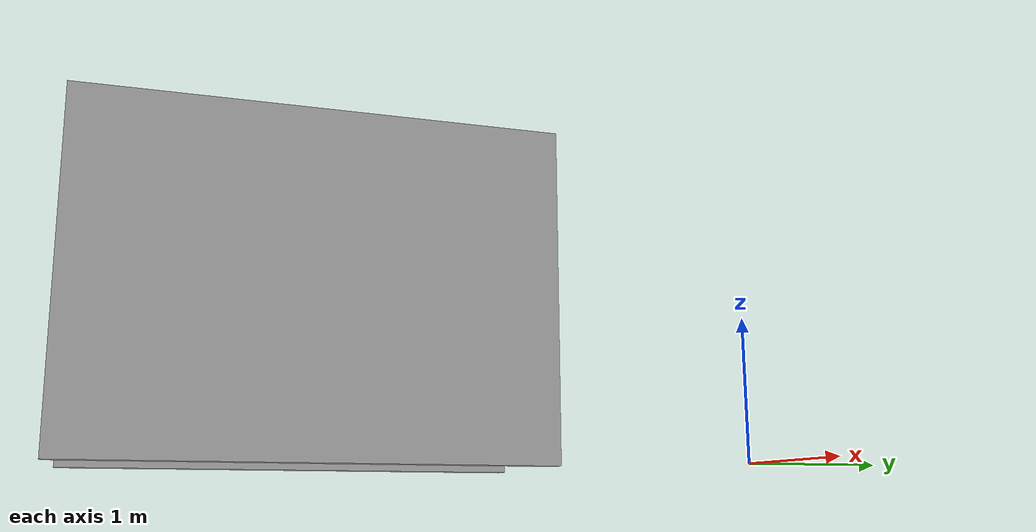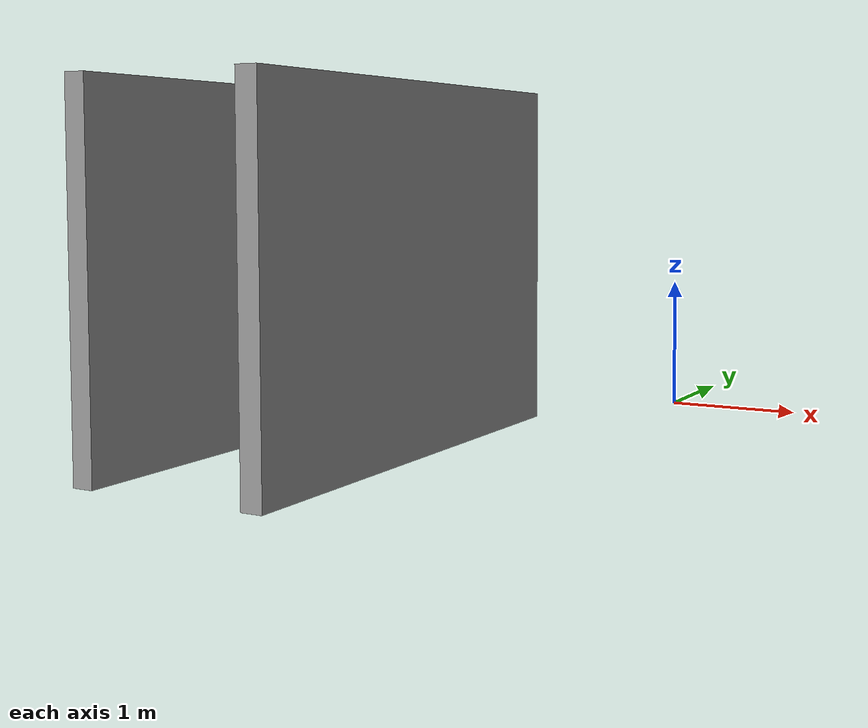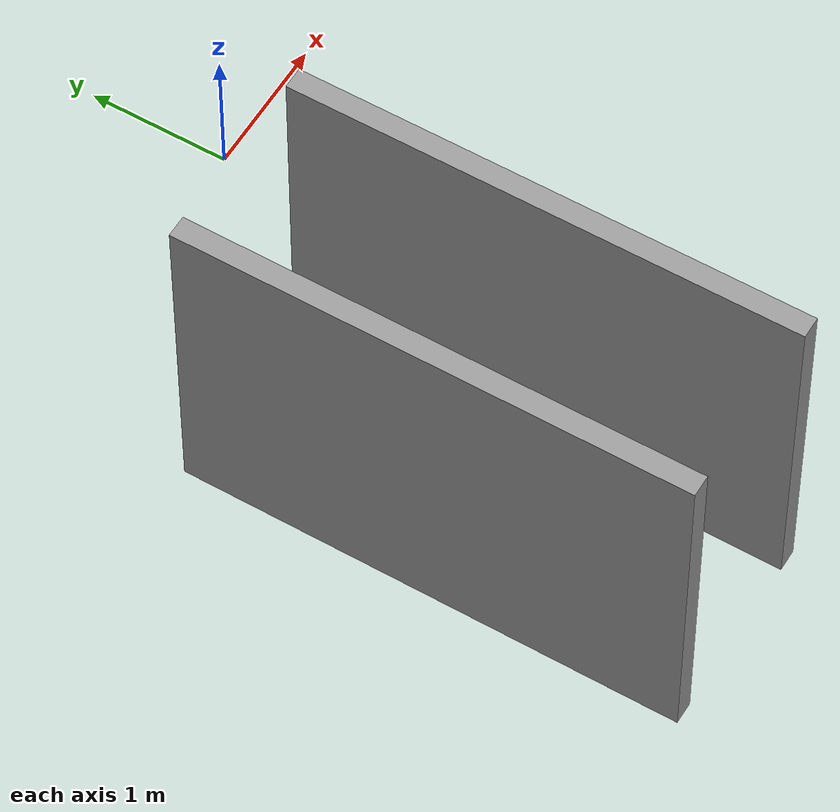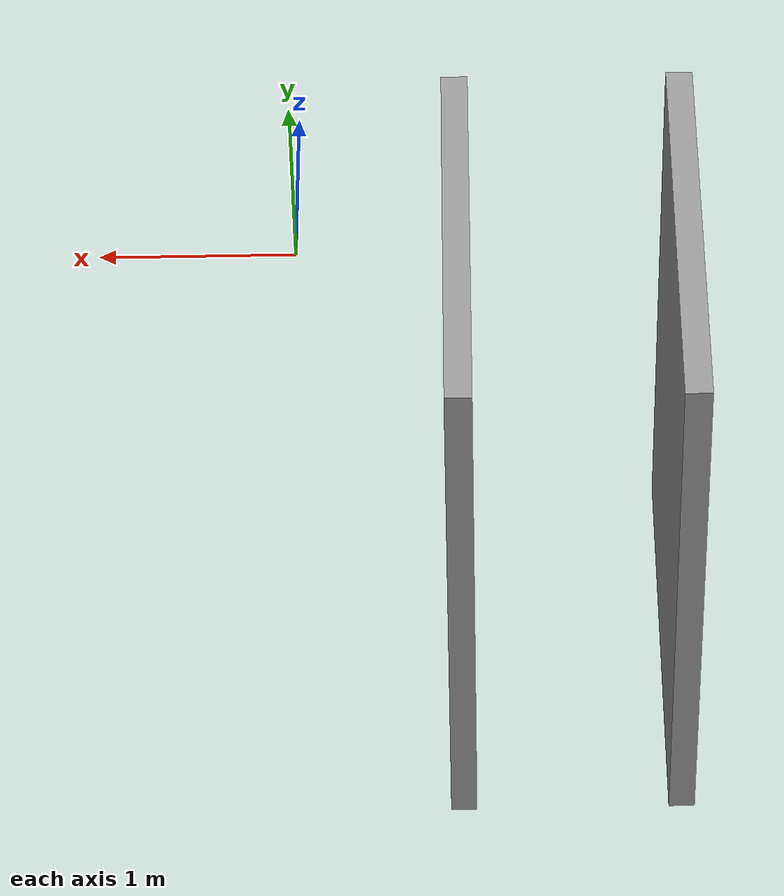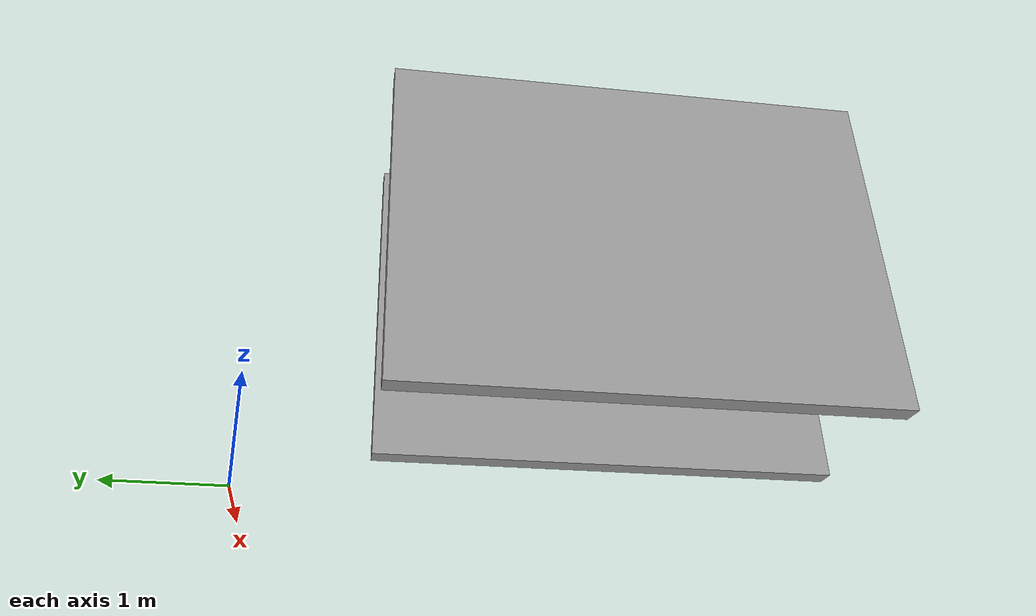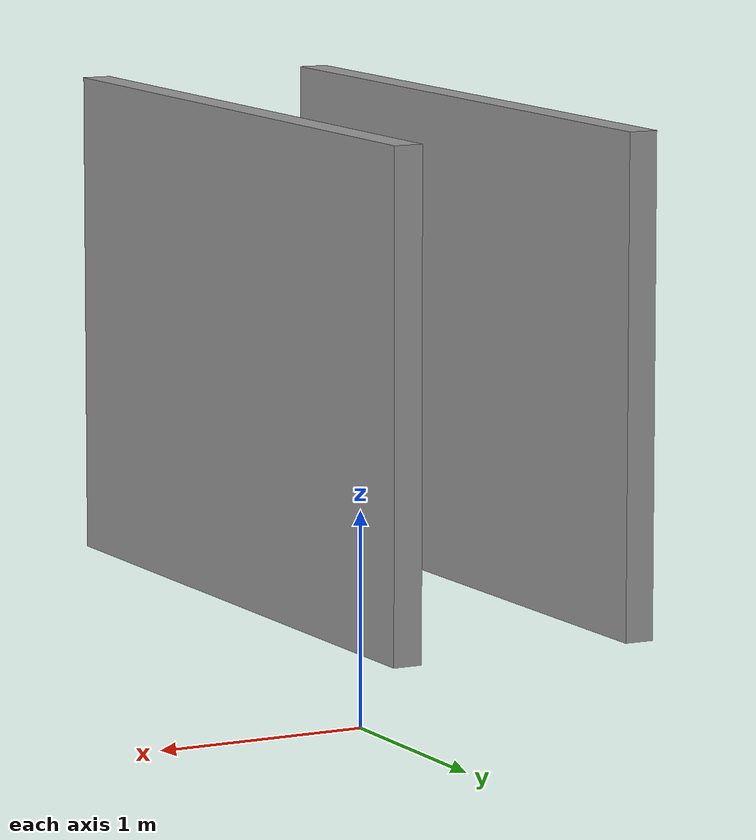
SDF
<?xml version='1.0'?>
<sdf version='1.7'>
  <model name='onedotone'>
    <pose>-1.0775 -2.2875 0 0 -0 0</pose>
    <link name='Wall_0'>
      <collision name='Wall_0_Collision'>
        <geometry>
          <box>
            <size>3.5 0.15 2.5</size>
          </box>
        </geometry>
        <pose>0 0 1.25 0 -0 0</pose>
      </collision>
      <visual name='Wall_0_Visual'>
        <pose>0 0 1.25 0 -0 0</pose>
        <geometry>
          <box>
            <size>3.5 0.15 2.5</size>
          </box>
        </geometry>
        <material>
          <script>
            <uri>file://media/materials/scripts/gazebo.material</uri>
            <name>Gazebo/Grey</name>
          </script>
          <ambient>1 1 1 1</ambient>
        </material>
        <meta>
          <layer>0</layer>
        </meta>
      </visual>
      <pose>-1.0025 -0.5275 0 0 -0 -1.5708</pose>
    </link>
    <link name='Wall_4'>
      <collision name='Wall_4_Collision'>
        <geometry>
          <box>
            <size>3.5 0.15 2.5</size>
          </box>
        </geometry>
        <pose>0 0 1.25 0 -0 0</pose>
      </collision>
      <visual name='Wall_4_Visual'>
        <pose>0 0 1.25 0 -0 0</pose>
        <geometry>
          <box>
            <size>3.5 0.15 2.5</size>
          </box>
        </geometry>
        <material>
          <script>
            <uri>file://media/materials/scripts/gazebo.material</uri>
            <name>Gazebo/Grey</name>
          </script>
          <ambient>1 1 1 1</ambient>
        </material>
        <meta>
          <layer>0</layer>
        </meta>
      </visual>
      <pose>0.2675 -0.5375 0 0 -0 -1.5708</pose>
    </link>
    <static>1</static>
  </model>
</sdf>
